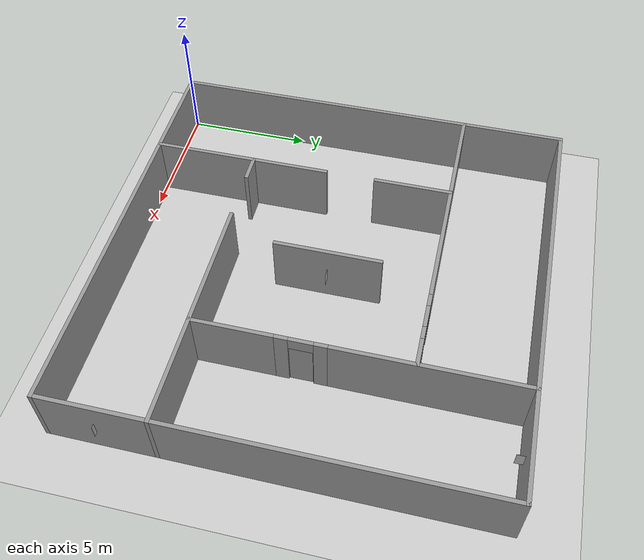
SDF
<sdf version="1.7">
 <world name="default">
  <model name="ground_plane">
   <static>1</static>
   <link name="link">
    <collision name="collision">
     <geometry><plane><normal>0 0 1</normal><size>100 100</size></plane></geometry>
     <surface><friction><ode><mu>100</mu><mu2>50</mu2></ode></friction></surface>
    </collision>
    <visual name="visual">
     <cast_shadows>0</cast_shadows>
     <geometry><plane><normal>0 0 1</normal><size>100 100</size></plane></geometry>
     <material>
      <script><uri>file://media/materials/scripts/gazebo.material</uri><name>Gazebo/Grey</name></script>
     </material>
    </visual>
   </link>
  </model>
  <model name="room1">
   <pose>8 8 0 0 -0 0</pose>
   <link name="Wall_1">
    <collision name="Wall_1_Collision">
     <geometry><box><size>16.15 0.15 2.5</size></box></geometry>
     <pose>0 0 1.25 0 -0 0</pose>
    </collision>
    <visual name="Wall_1_Visual">
     <pose>0 0 1.25 0 -0 0</pose>
     <geometry><box><size>16.15 0.15 2.5</size></box></geometry>
     <material>
      <script><uri>file://media/materials/scripts/gazebo.material</uri><name>Gazebo/Grey</name></script>
      <ambient>1 1 1 1</ambient>
     </material>
     <meta><layer>0</layer></meta>
    </visual>
    <pose>0 -8 0 0 -0 0</pose>
   </link>
   <link name="Wall_11">
    <pose>-2 4 0 0 -0 0</pose>
    <visual name="Wall_11_Visual_0">
     <pose>-1.5125 0 1.25 0 -0 0</pose>
     <geometry><box><size>9.125 0.15 2.5</size></box></geometry>
     <material>
      <script><uri>file://media/materials/scripts/gazebo.material</uri><name>Gazebo/Grey</name></script>
      <ambient>1 1 1 1</ambient>
     </material>
     <meta><layer>0</layer></meta>
    </visual>
    <collision name="Wall_11_Collision_0">
     <geometry><box><size>9.125 0.15 2.5</size></box></geometry>
     <pose>-1.5125 0 1.25 0 -0 0</pose>
    </collision>
    <visual name="Wall_11_Visual_1">
     <pose>5.5125 0 1.25 0 -0 0</pose>
     <geometry><box><size>1.125 0.15 2.5</size></box></geometry>
     <material>
      <script><uri>file://media/materials/scripts/gazebo.material</uri><name>Gazebo/Grey</name></script>
      <ambient>1 1 1 1</ambient>
     </material>
     <meta><layer>0</layer></meta>
    </visual>
    <collision name="Wall_11_Collision_1">
     <geometry><box><size>1.125 0.15 2.5</size></box></geometry>
     <pose>5.5125 0 1.25 0 -0 0</pose>
    </collision>
   </link>
   <link name="Wall_13">
    <pose>4 2 0 0 -0 -1.5708</pose>
    <visual name="Wall_13_Visual_0">
     <pose>-2.5125 0 1.25 0 -0 0</pose>
     <geometry><box><size>7.125 0.15 2.5</size></box></geometry>
     <material>
      <script><uri>file://media/materials/scripts/gazebo.material</uri><name>Gazebo/Grey</name></script>
      <ambient>1 1 1 1</ambient>
     </material>
     <meta><layer>0</layer></meta>
    </visual>
    <collision name="Wall_13_Collision_0">
     <geometry><box><size>7.125 0.15 2.5</size></box></geometry>
     <pose>-2.5125 0 1.25 0 -0 0</pose>
    </collision>
    <visual name="Wall_13_Visual_1">
     <pose>4.5125 0 1.25 0 -0 0</pose>
     <geometry><box><size>3.125 0.15 2.5</size></box></geometry>
     <material>
      <script><uri>file://media/materials/scripts/gazebo.material</uri><name>Gazebo/Grey</name></script>
      <ambient>1 1 1 1</ambient>
     </material>
     <meta><layer>0</layer></meta>
    </visual>
    <collision name="Wall_13_Collision_1">
     <geometry><box><size>3.125 0.15 2.5</size></box></geometry>
     <pose>4.5125 0 1.25 0 -0 0</pose>
    </collision>
   </link>
   <link name="Wall_15">
    <pose>2 -4 0 0 -0 0</pose>
    <visual name="Wall_15_Visual_0">
     <pose>-5.5125 0 1.25 0 -0 0</pose>
     <geometry><box><size>1.125 0.15 2.5</size></box></geometry>
     <material>
      <script><uri>file://media/materials/scripts/gazebo.material</uri><name>Gazebo/Grey</name></script>
      <ambient>1 1 1 1</ambient>
     </material>
     <meta><layer>0</layer></meta>
    </visual>
    <collision name="Wall_15_Collision_0">
     <geometry><box><size>1.125 0.15 2.5</size></box></geometry>
     <pose>-5.5125 0 1.25 0 -0 0</pose>
    </collision>
    <visual name="Wall_15_Visual_1">
     <pose>1.5125 0 1.25 0 -0 0</pose>
     <geometry><box><size>9.125 0.15 2.5</size></box></geometry>
     <material>
      <script><uri>file://media/materials/scripts/gazebo.material</uri><name>Gazebo/Grey</name></script>
      <ambient>1 1 1 1</ambient>
     </material>
     <meta><layer>0</layer></meta>
    </visual>
    <collision name="Wall_15_Collision_1">
     <geometry><box><size>9.125 0.15 2.5</size></box></geometry>
     <pose>1.5125 0 1.25 0 -0 0</pose>
    </collision>
   </link>
   <link name="Wall_17">
    <collision name="Wall_17_Collision">
     <geometry><box><size>4.15 0.15 2.5</size></box></geometry>
     <pose>0 0 1.25 0 -0 0</pose>
    </collision>
    <visual name="Wall_17_Visual">
     <pose>0 0 1.25 0 -0 0</pose>
     <geometry><box><size>4.15 0.15 2.5</size></box></geometry>
     <material>
      <script><uri>file://media/materials/scripts/gazebo.material</uri><name>Gazebo/Grey</name></script>
      <ambient>1 1 1 1</ambient>
     </material>
     <meta><layer>0</layer></meta>
    </visual>
    <pose>0 0 0 0 -0 1.5708</pose>
   </link>
   <link name="Wall_3">
    <collision name="Wall_3_Collision">
     <geometry><box><size>16.15 0.15 2.5</size></box></geometry>
     <pose>0 0 1.25 0 -0 0</pose>
    </collision>
    <visual name="Wall_3_Visual">
     <pose>0 0 1.25 0 -0 0</pose>
     <geometry><box><size>16.15 0.15 2.5</size></box></geometry>
     <material>
      <script><uri>file://media/materials/scripts/gazebo.material</uri><name>Gazebo/Grey</name></script>
      <ambient>1 1 1 1</ambient>
     </material>
     <meta><layer>0</layer></meta>
    </visual>
    <pose>-8 0 0 0 -0 1.5708</pose>
   </link>
   <link name="Wall_5">
    <collision name="Wall_5_Collision">
     <geometry><box><size>16.15 0.15 2.5</size></box></geometry>
     <pose>0 0 1.25 0 -0 0</pose>
    </collision>
    <visual name="Wall_5_Visual">
     <pose>0 0 1.25 0 -0 0</pose>
     <geometry><box><size>16.15 0.15 2.5</size></box></geometry>
     <material>
      <script><uri>file://media/materials/scripts/gazebo.material</uri><name>Gazebo/Grey</name></script>
      <ambient>1 1 1 1</ambient>
     </material>
     <meta><layer>0</layer></meta>
    </visual>
    <pose>0 8 0 0 -0 0</pose>
   </link>
   <link name="Wall_7">
    <collision name="Wall_7_Collision">
     <geometry><box><size>16.15 0.15 2.5</size></box></geometry>
     <pose>0 0 1.25 0 -0 0</pose>
    </collision>
    <visual name="Wall_7_Visual">
     <pose>0 0 1.25 0 -0 0</pose>
     <geometry><box><size>16.15 0.15 2.5</size></box></geometry>
     <material>
      <script><uri>file://media/materials/scripts/gazebo.material</uri><name>Gazebo/Grey</name></script>
      <ambient>1 1 1 1</ambient>
     </material>
     <meta><layer>0</layer></meta>
    </visual>
    <pose>8 0 0 0 -0 -1.5708</pose>
   </link>
   <link name="Wall_9">
    <pose>-4 -2 0 0 -0 1.5708</pose>
    <visual name="Wall_9_Visual_0">
     <pose>-2.5125 0 1.25 0 -0 0</pose>
     <geometry><box><size>7.125 0.15 2.5</size></box></geometry>
     <material>
      <script><uri>file://media/materials/scripts/gazebo.material</uri><name>Gazebo/Grey</name></script>
      <ambient>1 1 1 1</ambient>
     </material>
     <meta><layer>0</layer></meta>
    </visual>
    <collision name="Wall_9_Collision_0">
     <geometry><box><size>7.125 0.15 2.5</size></box></geometry>
     <pose>-2.5125 0 1.25 0 -0 0</pose>
    </collision>
    <visual name="Wall_9_Visual_1">
     <pose>4.5125 0 1.25 0 -0 0</pose>
     <geometry><box><size>3.125 0.15 2.5</size></box></geometry>
     <material>
      <script><uri>file://media/materials/scripts/gazebo.material</uri><name>Gazebo/Grey</name></script>
      <ambient>1 1 1 1</ambient>
     </material>
     <meta><layer>0</layer></meta>
    </visual>
    <collision name="Wall_9_Collision_1">
     <geometry><box><size>3.125 0.15 2.5</size></box></geometry>
     <pose>4.5125 0 1.25 0 -0 0</pose>
    </collision>
   </link>
   <static>1</static>
  </model>
  <model name="wall_with_door_no_gap_1">
   <link name="Wall">
    <pose>0 0 0 0 -4e-06 0</pose>
    <inertial>
     <inertia><ixx>1</ixx><ixy>0</ixy><ixz>0</ixz><iyy>1</iyy><iyz>0</iyz><izz>1</izz></inertia>
     <mass>1</mass>
    </inertial>
    <visual name="Wall_Visual_4">
     <pose>0.425 -0.055 1 0 -0 0</pose>
     <geometry><box><size>0.05 0.04 2</size></box></geometry>
     <material>
      <script><uri>file://media/materials/scripts/gazebo.material</uri><name>Gazebo/Grey</name></script>
      <ambient>1 1 1 1</ambient>
      <shader type="pixel"><normal_map>__default__</normal_map></shader>
      <emissive>0 0 0 1</emissive>
      <diffuse>0.7 0.7 0.7 1</diffuse>
      <specular>0.01 0.01 0.01 1</specular>
     </material>
     <meta><layer>0</layer></meta>
    </visual>
    <visual name="Wall_Visual_0">
     <pose>-0.7 0 1.25 0 -0 0</pose>
     <geometry><box><size>0.5 0.15 2.5</size></box></geometry>
     <material>
      <script><uri>file://media/materials/scripts/gazebo.material</uri><name>Gazebo/Grey</name></script>
      <ambient>1 1 1 1</ambient>
      <shader type="pixel"><normal_map>__default__</normal_map></shader>
      <emissive>0 0 0 1</emissive>
      <diffuse>0.7 0.7 0.7 1</diffuse>
      <specular>0.01 0.01 0.01 1</specular>
     </material>
     <meta><layer>0</layer></meta>
    </visual>
    <visual name="Wall_visual_3">
     <pose>-0.425 -0.055 1 0 -0 0</pose>
     <geometry><box><size>0.05 0.04 2</size></box></geometry>
     <material>
      <script><uri>file://media/materials/scripts/gazebo.material</uri><name>Gazebo/Grey</name></script>
      <ambient>1 1 1 1</ambient>
      <shader type="pixel"><normal_map>__default__</normal_map></shader>
      <emissive>0 0 0 1</emissive>
      <diffuse>0.7 0.7 0.7 1</diffuse>
      <specular>0.01 0.01 0.01 1</specular>
     </material>
     <meta><layer>0</layer></meta>
    </visual>
    <visual name="Wall_Visual_1">
     <pose>0.7 0 1.25 0 -0 0</pose>
     <geometry><box><size>0.5 0.15 2.5</size></box></geometry>
     <material>
      <script><uri>file://media/materials/scripts/gazebo.material</uri><name>Gazebo/Grey</name></script>
      <ambient>1 1 1 1</ambient>
      <shader type="pixel"><normal_map>__default__</normal_map></shader>
      <emissive>0 0 0 1</emissive>
      <diffuse>0.7 0.7 0.7 1</diffuse>
      <specular>0.01 0.01 0.01 1</specular>
     </material>
     <meta><layer>0</layer></meta>
    </visual>
    <visual name="Wall_Visual_2">
     <pose>0 0 2.25 0 -0 0</pose>
     <geometry><box><size>0.9 0.15 0.5</size></box></geometry>
     <material>
      <script><uri>file://media/materials/scripts/gazebo.material</uri><name>Gazebo/Grey</name></script>
      <ambient>1 1 1 1</ambient>
      <shader type="pixel"><normal_map>__default__</normal_map></shader>
      <emissive>0 0 0 1</emissive>
      <diffuse>0.7 0.7 0.7 1</diffuse>
      <specular>0.01 0.01 0.01 1</specular>
     </material>
     <meta><layer>0</layer></meta>
    </visual>
    <collision name="Wall_Collision_3">
     <pose>-0.425 -0.055 1 0 -0 0</pose>
     <geometry><box><size>0.05 0.04 2</size></box></geometry>
     <surface>
      <friction>
       <ode><mu>1</mu><mu2>1</mu2><fdir1>0 0 0</fdir1><slip1>0</slip1><slip2>0</slip2></ode>
       <torsional>
        <coefficient>1</coefficient>
        <patch_radius>0</patch_radius>
        <surface_radius>0</surface_radius>
        <use_patch_radius>1</use_patch_radius>
        <ode><slip>0</slip></ode>
       </torsional>
      </friction>
      <bounce><restitution_coefficient>0</restitution_coefficient><threshold>1e+06</threshold></bounce>
      <contact>
       <collide_without_contact>0</collide_without_contact>
       <collide_without_contact_bitmask>1</collide_without_contact_bitmask>
       <collide_bitmask>1</collide_bitmask>
       <ode>
        <soft_cfm>0</soft_cfm>
        <soft_erp>0.2</soft_erp>
        <kp>1e+13</kp>
        <kd>1</kd>
        <max_vel>0.01</max_vel>
        <min_depth>0</min_depth>
       </ode>
       <bullet>
        <split_impulse>1</split_impulse>
        <split_impulse_penetration_threshold>-0.01</split_impulse_penetration_threshold>
        <soft_cfm>0</soft_cfm>
        <soft_erp>0.2</soft_erp>
        <kp>1e+13</kp>
        <kd>1</kd>
       </bullet>
      </contact>
     </surface>
    </collision>
    <collision name="Wall_Collision_4">
     <pose>0.425 -0.055 1 0 -0 0</pose>
     <geometry><box><size>0.05 0.04 2</size></box></geometry>
     <surface>
      <friction>
       <ode><mu>1</mu><mu2>1</mu2><fdir1>0 0 0</fdir1><slip1>0</slip1><slip2>0</slip2></ode>
       <torsional>
        <coefficient>1</coefficient>
        <patch_radius>0</patch_radius>
        <surface_radius>0</surface_radius>
        <use_patch_radius>1</use_patch_radius>
        <ode><slip>0</slip></ode>
       </torsional>
      </friction>
      <bounce><restitution_coefficient>0</restitution_coefficient><threshold>1e+06</threshold></bounce>
      <contact>
       <collide_without_contact>0</collide_without_contact>
       <collide_without_contact_bitmask>1</collide_without_contact_bitmask>
       <collide_bitmask>1</collide_bitmask>
       <ode>
        <soft_cfm>0</soft_cfm>
        <soft_erp>0.2</soft_erp>
        <kp>1e+13</kp>
        <kd>1</kd>
        <max_vel>0.01</max_vel>
        <min_depth>0</min_depth>
       </ode>
       <bullet>
        <split_impulse>1</split_impulse>
        <split_impulse_penetration_threshold>-0.01</split_impulse_penetration_threshold>
        <soft_cfm>0</soft_cfm>
        <soft_erp>0.2</soft_erp>
        <kp>1e+13</kp>
        <kd>1</kd>
       </bullet>
      </contact>
     </surface>
    </collision>
    <collision name="Wall_Collision_1">
     <pose>0.7 0 1.25 0 -0 0</pose>
     <geometry><box><size>0.5 0.15 2.5</size></box></geometry>
     <surface>
      <friction>
       <ode><mu>1</mu><mu2>1</mu2><fdir1>0 0 0</fdir1><slip1>0</slip1><slip2>0</slip2></ode>
       <torsional>
        <coefficient>1</coefficient>
        <patch_radius>0</patch_radius>
        <surface_radius>0</surface_radius>
        <use_patch_radius>1</use_patch_radius>
        <ode><slip>0</slip></ode>
       </torsional>
      </friction>
      <bounce><restitution_coefficient>0</restitution_coefficient><threshold>1e+06</threshold></bounce>
      <contact>
       <collide_without_contact>0</collide_without_contact>
       <collide_without_contact_bitmask>1</collide_without_contact_bitmask>
       <collide_bitmask>1</collide_bitmask>
       <ode>
        <soft_cfm>0</soft_cfm>
        <soft_erp>0.2</soft_erp>
        <kp>1e+13</kp>
        <kd>1</kd>
        <max_vel>0.01</max_vel>
        <min_depth>0</min_depth>
       </ode>
       <bullet>
        <split_impulse>1</split_impulse>
        <split_impulse_penetration_threshold>-0.01</split_impulse_penetration_threshold>
        <soft_cfm>0</soft_cfm>
        <soft_erp>0.2</soft_erp>
        <kp>1e+13</kp>
        <kd>1</kd>
       </bullet>
      </contact>
     </surface>
    </collision>
    <collision name="Wall_Collision_0">
     <pose>-0.7 0 1.25 0 -0 0</pose>
     <geometry><box><size>0.5 0.15 2.5</size></box></geometry>
     <surface>
      <friction>
       <ode><mu>1</mu><mu2>1</mu2><fdir1>0 0 0</fdir1><slip1>0</slip1><slip2>0</slip2></ode>
       <torsional>
        <coefficient>1</coefficient>
        <patch_radius>0</patch_radius>
        <surface_radius>0</surface_radius>
        <use_patch_radius>1</use_patch_radius>
        <ode><slip>0</slip></ode>
       </torsional>
      </friction>
      <bounce><restitution_coefficient>0</restitution_coefficient><threshold>1e+06</threshold></bounce>
      <contact>
       <collide_without_contact>0</collide_without_contact>
       <collide_without_contact_bitmask>1</collide_without_contact_bitmask>
       <collide_bitmask>1</collide_bitmask>
       <ode>
        <soft_cfm>0</soft_cfm>
        <soft_erp>0.2</soft_erp>
        <kp>1e+13</kp>
        <kd>1</kd>
        <max_vel>0.01</max_vel>
        <min_depth>0</min_depth>
       </ode>
       <bullet>
        <split_impulse>1</split_impulse>
        <split_impulse_penetration_threshold>-0.01</split_impulse_penetration_threshold>
        <soft_cfm>0</soft_cfm>
        <soft_erp>0.2</soft_erp>
        <kp>1e+13</kp>
        <kd>1</kd>
       </bullet>
      </contact>
     </surface>
    </collision>
    <collision name="Wall_Collision_2">
     <pose>0 0 2.25 0 -0 0</pose>
     <geometry><box><size>0.9 0.15 0.5</size></box></geometry>
     <surface>
      <friction>
       <ode><mu>1</mu><mu2>1</mu2><fdir1>0 0 0</fdir1><slip1>0</slip1><slip2>0</slip2></ode>
       <torsional>
        <coefficient>1</coefficient>
        <patch_radius>0</patch_radius>
        <surface_radius>0</surface_radius>
        <use_patch_radius>1</use_patch_radius>
        <ode><slip>0</slip></ode>
       </torsional>
      </friction>
      <bounce><restitution_coefficient>0</restitution_coefficient><threshold>1e+06</threshold></bounce>
      <contact>
       <collide_without_contact>0</collide_without_contact>
       <collide_without_contact_bitmask>1</collide_without_contact_bitmask>
       <collide_bitmask>1</collide_bitmask>
       <ode>
        <soft_cfm>0</soft_cfm>
        <soft_erp>0.2</soft_erp>
        <kp>1e+13</kp>
        <kd>1</kd>
        <max_vel>0.01</max_vel>
        <min_depth>0</min_depth>
       </ode>
       <bullet>
        <split_impulse>1</split_impulse>
        <split_impulse_penetration_threshold>-0.01</split_impulse_penetration_threshold>
        <soft_cfm>0</soft_cfm>
        <soft_erp>0.2</soft_erp>
        <kp>1e+13</kp>
        <kd>1</kd>
       </bullet>
      </contact>
     </surface>
    </collision>
    <static>1</static>
   </link>
   <link name="door">
    <inertial>
     <mass>1</mass>
     <inertia>
      <ixx>0.166667</ixx>
      <ixy>0</ixy>
      <ixz>0</ixz>
      <iyy>0.166667</iyy>
      <iyz>0</iyz>
      <izz>0.166667</izz>
     </inertia>
    </inertial>
    <pose>-0 -0 1 0 -4e-06 0</pose>
    <visual name="visual">
     <pose>0.01 0 0 0 -0 0</pose>
     <geometry><box><size>0.86 0.04 2</size></box></geometry>
     <material>
      <lighting>1</lighting>
      <script><uri>file://media/materials/scripts/gazebo.material</uri><name>Gazebo/Grey</name></script>
      <shader type="pixel"><normal_map>__default__</normal_map></shader>
      <ambient>0.3 0.3 0.3 1</ambient>
      <diffuse>0.7 0.7 0.7 1</diffuse>
      <specular>0.01 0.01 0.01 1</specular>
      <emissive>0 0 0 1</emissive>
     </material>
    </visual>
    <collision name="collision">
     <pose>0.01 0 0 0 -0 0</pose>
     <geometry><box><size>0.84 0.04 2</size></box></geometry>
     <surface>
      <friction>
       <ode><mu>1</mu><mu2>1</mu2><fdir1>0 0 0</fdir1><slip1>0</slip1><slip2>0</slip2></ode>
       <torsional>
        <coefficient>1</coefficient>
        <patch_radius>0</patch_radius>
        <surface_radius>0</surface_radius>
        <use_patch_radius>1</use_patch_radius>
        <ode><slip>0</slip></ode>
       </torsional>
      </friction>
      <bounce><restitution_coefficient>0</restitution_coefficient><threshold>1e+06</threshold></bounce>
      <contact>
       <collide_without_contact>0</collide_without_contact>
       <collide_without_contact_bitmask>1</collide_without_contact_bitmask>
       <collide_bitmask>1</collide_bitmask>
       <ode>
        <soft_cfm>0</soft_cfm>
        <soft_erp>0.2</soft_erp>
        <kp>1e+13</kp>
        <kd>1</kd>
        <max_vel>0.01</max_vel>
        <min_depth>0</min_depth>
       </ode>
       <bullet>
        <split_impulse>1</split_impulse>
        <split_impulse_penetration_threshold>-0.01</split_impulse_penetration_threshold>
        <soft_cfm>0</soft_cfm>
        <soft_erp>0.2</soft_erp>
        <kp>1e+13</kp>
        <kd>1</kd>
       </bullet>
      </contact>
     </surface>
    </collision>
    <static>0</static>
   </link>
   <joint name="Door_JOINT" type="revolute">
    <parent>Wall</parent>
    <child>door</child>
    <pose>-0.43 0 0 0 -0 0</pose>
    <axis>
     <xyz>0 0 1</xyz>
     <limit><lower>0</lower><upper>1.57</upper><effort>-1</effort><velocity>-1</velocity></limit>
     <dynamics>
      <spring_reference>0</spring_reference>
      <spring_stiffness>0</spring_stiffness>
      <damping>0</damping>
      <friction>0</friction>
     </dynamics>
    </axis>
    <physics>
     <ode><limit><cfm>0</cfm><erp>0.2</erp></limit><suspension><cfm>0</cfm><erp>0.2</erp></suspension></ode>
    </physics>
   </joint>
   <joint name="WALL_FIXED" type="fixed"><parent>world</parent><child>Wall</child></joint>
   <plugin name="wall_and_door_plugin" filename="libDoorControlPlugin.so">
    <initial_position>0</initial_position>
    <switch_flag>true</switch_flag>
    <switch_duration>20</switch_duration>
   </plugin>
   <static>0</static>
   <pose>12 8 0 0 0 -1.57</pose>
  </model>
  <model name="wall_with_door_no_gap_2">
   <link name="Wall">
    <pose>0 0 0 0 -4e-06 0</pose>
    <inertial>
     <inertia><ixx>1</ixx><ixy>0</ixy><ixz>0</ixz><iyy>1</iyy><iyz>0</iyz><izz>1</izz></inertia>
     <mass>1</mass>
    </inertial>
    <visual name="Wall_Visual_4">
     <pose>0.425 -0.055 1 0 -0 0</pose>
     <geometry><box><size>0.05 0.04 2</size></box></geometry>
     <material>
      <script><uri>file://media/materials/scripts/gazebo.material</uri><name>Gazebo/Grey</name></script>
      <ambient>1 1 1 1</ambient>
      <shader type="pixel"><normal_map>__default__</normal_map></shader>
      <emissive>0 0 0 1</emissive>
      <diffuse>0.7 0.7 0.7 1</diffuse>
      <specular>0.01 0.01 0.01 1</specular>
     </material>
     <meta><layer>0</layer></meta>
    </visual>
    <visual name="Wall_Visual_0">
     <pose>-0.7 0 1.25 0 -0 0</pose>
     <geometry><box><size>0.5 0.15 2.5</size></box></geometry>
     <material>
      <script><uri>file://media/materials/scripts/gazebo.material</uri><name>Gazebo/Grey</name></script>
      <ambient>1 1 1 1</ambient>
      <shader type="pixel"><normal_map>__default__</normal_map></shader>
      <emissive>0 0 0 1</emissive>
      <diffuse>0.7 0.7 0.7 1</diffuse>
      <specular>0.01 0.01 0.01 1</specular>
     </material>
     <meta><layer>0</layer></meta>
    </visual>
    <visual name="Wall_visual_3">
     <pose>-0.425 -0.055 1 0 -0 0</pose>
     <geometry><box><size>0.05 0.04 2</size></box></geometry>
     <material>
      <script><uri>file://media/materials/scripts/gazebo.material</uri><name>Gazebo/Grey</name></script>
      <ambient>1 1 1 1</ambient>
      <shader type="pixel"><normal_map>__default__</normal_map></shader>
      <emissive>0 0 0 1</emissive>
      <diffuse>0.7 0.7 0.7 1</diffuse>
      <specular>0.01 0.01 0.01 1</specular>
     </material>
     <meta><layer>0</layer></meta>
    </visual>
    <visual name="Wall_Visual_1">
     <pose>0.7 0 1.25 0 -0 0</pose>
     <geometry><box><size>0.5 0.15 2.5</size></box></geometry>
     <material>
      <script><uri>file://media/materials/scripts/gazebo.material</uri><name>Gazebo/Grey</name></script>
      <ambient>1 1 1 1</ambient>
      <shader type="pixel"><normal_map>__default__</normal_map></shader>
      <emissive>0 0 0 1</emissive>
      <diffuse>0.7 0.7 0.7 1</diffuse>
      <specular>0.01 0.01 0.01 1</specular>
     </material>
     <meta><layer>0</layer></meta>
    </visual>
    <visual name="Wall_Visual_2">
     <pose>0 0 2.25 0 -0 0</pose>
     <geometry><box><size>0.9 0.15 0.5</size></box></geometry>
     <material>
      <script><uri>file://media/materials/scripts/gazebo.material</uri><name>Gazebo/Grey</name></script>
      <ambient>1 1 1 1</ambient>
      <shader type="pixel"><normal_map>__default__</normal_map></shader>
      <emissive>0 0 0 1</emissive>
      <diffuse>0.7 0.7 0.7 1</diffuse>
      <specular>0.01 0.01 0.01 1</specular>
     </material>
     <meta><layer>0</layer></meta>
    </visual>
    <collision name="Wall_Collision_3">
     <pose>-0.425 -0.055 1 0 -0 0</pose>
     <geometry><box><size>0.05 0.04 2</size></box></geometry>
     <surface>
      <friction>
       <ode><mu>1</mu><mu2>1</mu2><fdir1>0 0 0</fdir1><slip1>0</slip1><slip2>0</slip2></ode>
       <torsional>
        <coefficient>1</coefficient>
        <patch_radius>0</patch_radius>
        <surface_radius>0</surface_radius>
        <use_patch_radius>1</use_patch_radius>
        <ode><slip>0</slip></ode>
       </torsional>
      </friction>
      <bounce><restitution_coefficient>0</restitution_coefficient><threshold>1e+06</threshold></bounce>
      <contact>
       <collide_without_contact>0</collide_without_contact>
       <collide_without_contact_bitmask>1</collide_without_contact_bitmask>
       <collide_bitmask>1</collide_bitmask>
       <ode>
        <soft_cfm>0</soft_cfm>
        <soft_erp>0.2</soft_erp>
        <kp>1e+13</kp>
        <kd>1</kd>
        <max_vel>0.01</max_vel>
        <min_depth>0</min_depth>
       </ode>
       <bullet>
        <split_impulse>1</split_impulse>
        <split_impulse_penetration_threshold>-0.01</split_impulse_penetration_threshold>
        <soft_cfm>0</soft_cfm>
        <soft_erp>0.2</soft_erp>
        <kp>1e+13</kp>
        <kd>1</kd>
       </bullet>
      </contact>
     </surface>
    </collision>
    <collision name="Wall_Collision_4">
     <pose>0.425 -0.055 1 0 -0 0</pose>
     <geometry><box><size>0.05 0.04 2</size></box></geometry>
     <surface>
      <friction>
       <ode><mu>1</mu><mu2>1</mu2><fdir1>0 0 0</fdir1><slip1>0</slip1><slip2>0</slip2></ode>
       <torsional>
        <coefficient>1</coefficient>
        <patch_radius>0</patch_radius>
        <surface_radius>0</surface_radius>
        <use_patch_radius>1</use_patch_radius>
        <ode><slip>0</slip></ode>
       </torsional>
      </friction>
      <bounce><restitution_coefficient>0</restitution_coefficient><threshold>1e+06</threshold></bounce>
      <contact>
       <collide_without_contact>0</collide_without_contact>
       <collide_without_contact_bitmask>1</collide_without_contact_bitmask>
       <collide_bitmask>1</collide_bitmask>
       <ode>
        <soft_cfm>0</soft_cfm>
        <soft_erp>0.2</soft_erp>
        <kp>1e+13</kp>
        <kd>1</kd>
        <max_vel>0.01</max_vel>
        <min_depth>0</min_depth>
       </ode>
       <bullet>
        <split_impulse>1</split_impulse>
        <split_impulse_penetration_threshold>-0.01</split_impulse_penetration_threshold>
        <soft_cfm>0</soft_cfm>
        <soft_erp>0.2</soft_erp>
        <kp>1e+13</kp>
        <kd>1</kd>
       </bullet>
      </contact>
     </surface>
    </collision>
    <collision name="Wall_Collision_1">
     <pose>0.7 0 1.25 0 -0 0</pose>
     <geometry><box><size>0.5 0.15 2.5</size></box></geometry>
     <surface>
      <friction>
       <ode><mu>1</mu><mu2>1</mu2><fdir1>0 0 0</fdir1><slip1>0</slip1><slip2>0</slip2></ode>
       <torsional>
        <coefficient>1</coefficient>
        <patch_radius>0</patch_radius>
        <surface_radius>0</surface_radius>
        <use_patch_radius>1</use_patch_radius>
        <ode><slip>0</slip></ode>
       </torsional>
      </friction>
      <bounce><restitution_coefficient>0</restitution_coefficient><threshold>1e+06</threshold></bounce>
      <contact>
       <collide_without_contact>0</collide_without_contact>
       <collide_without_contact_bitmask>1</collide_without_contact_bitmask>
       <collide_bitmask>1</collide_bitmask>
       <ode>
        <soft_cfm>0</soft_cfm>
        <soft_erp>0.2</soft_erp>
        <kp>1e+13</kp>
        <kd>1</kd>
        <max_vel>0.01</max_vel>
        <min_depth>0</min_depth>
       </ode>
       <bullet>
        <split_impulse>1</split_impulse>
        <split_impulse_penetration_threshold>-0.01</split_impulse_penetration_threshold>
        <soft_cfm>0</soft_cfm>
        <soft_erp>0.2</soft_erp>
        <kp>1e+13</kp>
        <kd>1</kd>
       </bullet>
      </contact>
     </surface>
    </collision>
    <collision name="Wall_Collision_0">
     <pose>-0.7 0 1.25 0 -0 0</pose>
     <geometry><box><size>0.5 0.15 2.5</size></box></geometry>
     <surface>
      <friction>
       <ode><mu>1</mu><mu2>1</mu2><fdir1>0 0 0</fdir1><slip1>0</slip1><slip2>0</slip2></ode>
       <torsional>
        <coefficient>1</coefficient>
        <patch_radius>0</patch_radius>
        <surface_radius>0</surface_radius>
        <use_patch_radius>1</use_patch_radius>
        <ode><slip>0</slip></ode>
       </torsional>
      </friction>
      <bounce><restitution_coefficient>0</restitution_coefficient><threshold>1e+06</threshold></bounce>
      <contact>
       <collide_without_contact>0</collide_without_contact>
       <collide_without_contact_bitmask>1</collide_without_contact_bitmask>
       <collide_bitmask>1</collide_bitmask>
       <ode>
        <soft_cfm>0</soft_cfm>
        <soft_erp>0.2</soft_erp>
        <kp>1e+13</kp>
        <kd>1</kd>
        <max_vel>0.01</max_vel>
        <min_depth>0</min_depth>
       </ode>
       <bullet>
        <split_impulse>1</split_impulse>
        <split_impulse_penetration_threshold>-0.01</split_impulse_penetration_threshold>
        <soft_cfm>0</soft_cfm>
        <soft_erp>0.2</soft_erp>
        <kp>1e+13</kp>
        <kd>1</kd>
       </bullet>
      </contact>
     </surface>
    </collision>
    <collision name="Wall_Collision_2">
     <pose>0 0 2.25 0 -0 0</pose>
     <geometry><box><size>0.9 0.15 0.5</size></box></geometry>
     <surface>
      <friction>
       <ode><mu>1</mu><mu2>1</mu2><fdir1>0 0 0</fdir1><slip1>0</slip1><slip2>0</slip2></ode>
       <torsional>
        <coefficient>1</coefficient>
        <patch_radius>0</patch_radius>
        <surface_radius>0</surface_radius>
        <use_patch_radius>1</use_patch_radius>
        <ode><slip>0</slip></ode>
       </torsional>
      </friction>
      <bounce><restitution_coefficient>0</restitution_coefficient><threshold>1e+06</threshold></bounce>
      <contact>
       <collide_without_contact>0</collide_without_contact>
       <collide_without_contact_bitmask>1</collide_without_contact_bitmask>
       <collide_bitmask>1</collide_bitmask>
       <ode>
        <soft_cfm>0</soft_cfm>
        <soft_erp>0.2</soft_erp>
        <kp>1e+13</kp>
        <kd>1</kd>
        <max_vel>0.01</max_vel>
        <min_depth>0</min_depth>
       </ode>
       <bullet>
        <split_impulse>1</split_impulse>
        <split_impulse_penetration_threshold>-0.01</split_impulse_penetration_threshold>
        <soft_cfm>0</soft_cfm>
        <soft_erp>0.2</soft_erp>
        <kp>1e+13</kp>
        <kd>1</kd>
       </bullet>
      </contact>
     </surface>
    </collision>
    <static>1</static>
   </link>
   <link name="door">
    <inertial>
     <mass>1</mass>
     <inertia>
      <ixx>0.166667</ixx>
      <ixy>0</ixy>
      <ixz>0</ixz>
      <iyy>0.166667</iyy>
      <iyz>0</iyz>
      <izz>0.166667</izz>
     </inertia>
    </inertial>
    <pose>-0 -0 1 0 -4e-06 0</pose>
    <visual name="visual">
     <pose>0.01 0 0 0 -0 0</pose>
     <geometry><box><size>0.86 0.04 2</size></box></geometry>
     <material>
      <lighting>1</lighting>
      <script><uri>file://media/materials/scripts/gazebo.material</uri><name>Gazebo/Grey</name></script>
      <shader type="pixel"><normal_map>__default__</normal_map></shader>
      <ambient>0.3 0.3 0.3 1</ambient>
      <diffuse>0.7 0.7 0.7 1</diffuse>
      <specular>0.01 0.01 0.01 1</specular>
      <emissive>0 0 0 1</emissive>
     </material>
    </visual>
    <collision name="collision">
     <pose>0.01 0 0 0 -0 0</pose>
     <geometry><box><size>0.84 0.04 2</size></box></geometry>
     <surface>
      <friction>
       <ode><mu>1</mu><mu2>1</mu2><fdir1>0 0 0</fdir1><slip1>0</slip1><slip2>0</slip2></ode>
       <torsional>
        <coefficient>1</coefficient>
        <patch_radius>0</patch_radius>
        <surface_radius>0</surface_radius>
        <use_patch_radius>1</use_patch_radius>
        <ode><slip>0</slip></ode>
       </torsional>
      </friction>
      <bounce><restitution_coefficient>0</restitution_coefficient><threshold>1e+06</threshold></bounce>
      <contact>
       <collide_without_contact>0</collide_without_contact>
       <collide_without_contact_bitmask>1</collide_without_contact_bitmask>
       <collide_bitmask>1</collide_bitmask>
       <ode>
        <soft_cfm>0</soft_cfm>
        <soft_erp>0.2</soft_erp>
        <kp>1e+13</kp>
        <kd>1</kd>
        <max_vel>0.01</max_vel>
        <min_depth>0</min_depth>
       </ode>
       <bullet>
        <split_impulse>1</split_impulse>
        <split_impulse_penetration_threshold>-0.01</split_impulse_penetration_threshold>
        <soft_cfm>0</soft_cfm>
        <soft_erp>0.2</soft_erp>
        <kp>1e+13</kp>
        <kd>1</kd>
       </bullet>
      </contact>
     </surface>
    </collision>
    <static>0</static>
   </link>
   <joint name="Door_JOINT" type="revolute">
    <parent>Wall</parent>
    <child>door</child>
    <pose>-0.43 0 0 0 -0 0</pose>
    <axis>
     <xyz>0 0 1</xyz>
     <limit><lower>0</lower><upper>1.57</upper><effort>-1</effort><velocity>-1</velocity></limit>
     <dynamics>
      <spring_reference>0</spring_reference>
      <spring_stiffness>0</spring_stiffness>
      <damping>0</damping>
      <friction>0</friction>
     </dynamics>
    </axis>
    <physics>
     <ode><limit><cfm>0</cfm><erp>0.2</erp></limit><suspension><cfm>0</cfm><erp>0.2</erp></suspension></ode>
    </physics>
   </joint>
   <joint name="WALL_FIXED" type="fixed"><parent>world</parent><child>Wall</child></joint>
   <plugin name="wall_and_door_plugin" filename="libDoorControlPlugin.so">
    <initial_position>0</initial_position>
    <switch_flag>true</switch_flag>
    <switch_duration>25</switch_duration>
   </plugin>
   <static>0</static>
   <pose>10 12 0 0 -0 0</pose>
  </model>
  <model name="static_apriltag_2">
   <link name="link">
    <pose>0 0 0 0 1.57 0</pose>
    <inertial>
     <mass>0.39</mass>
     <inertia><ixx>0.00058</ixx><ixy>0</ixy><ixz>0</ixz><iyy>0.00058</iyy><iyz>0</iyz><izz>0.00019</izz></inertia>
    </inertial>
    <collision name="collision"><geometry><box><size>0.6 0.6 0.01</size></box></geometry></collision>
    <visual name="visual">
     <geometry><box><size>0.6 0.6 0.01</size></box></geometry>
     <material>
      <script>
       <uri>model://apriltag/materials/scripts</uri>
       <uri>model://apriltag/materials/textures</uri>
       <name>apriltag/Diffuse2</name>
      </script>
     </material>
    </visual>
    <gravity>0</gravity>
   </link>
   <pose>12 3.927 1.25 0 -0 0</pose>
   <static>1</static>
   <pose>0.80811 0.829943 0 0 -0 0</pose>
  </model>
  <model name="static_apriltag_3">
   <link name="link">
    <pose>0 0 0 -1.57 1.57 -0</pose>
    <inertial>
     <mass>0.39</mass>
     <inertia><ixx>0.00058</ixx><ixy>0</ixy><ixz>0</ixz><iyy>0.00058</iyy><iyz>0</iyz><izz>0.00019</izz></inertia>
    </inertial>
    <collision name="collision"><geometry><box><size>0.6 0.6 0.01</size></box></geometry></collision>
    <visual name="visual">
     <geometry><box><size>0.6 0.6 0.01</size></box></geometry>
     <material>
      <script>
       <uri>model://apriltag/materials/scripts</uri>
       <uri>model://apriltag/materials/textures</uri>
       <name>apriltag/Diffuse3</name>
      </script>
     </material>
    </visual>
    <gravity>0</gravity>
   </link>
   <pose>15.925 2 1.25 0 -0 0</pose>
   <static>1</static>
   <pose>3.65849 3.02317 0 0 -0 0</pose>
  </model>
  <model name="static_apriltag_5">
   <link name="link">
    <pose>0 0 0 -1.57 1.57 -0</pose>
    <inertial>
     <mass>0.39</mass>
     <inertia><ixx>0.00058</ixx><ixy>0</ixy><ixz>0</ixz><iyy>0.00058</iyy><iyz>0</iyz><izz>0.00019</izz></inertia>
    </inertial>
    <collision name="collision"><geometry><box><size>0.6 0.6 0.01</size></box></geometry></collision>
    <visual name="visual">
     <geometry><box><size>0.6 0.6 0.01</size></box></geometry>
     <material>
      <script>
       <uri>model://apriltag/materials/scripts</uri>
       <uri>model://apriltag/materials/textures</uri>
       <name>apriltag/Diffuse5</name>
      </script>
     </material>
    </visual>
    <gravity>0</gravity>
   </link>
   <pose>8.075 8 1.25 0 -0 0</pose>
   <static>1</static>
   <pose>5.04082 3.71574 0 0 -0 0</pose>
  </model>
  <model name="static_apriltag_8">
   <link name="link">
    <pose>0 0 0 0 1.57 0</pose>
    <inertial>
     <mass>0.39</mass>
     <inertia><ixx>0.00058</ixx><ixy>0</ixy><ixz>0</ixz><iyy>0.00058</iyy><iyz>0</iyz><izz>0.00019</izz></inertia>
    </inertial>
    <collision name="collision"><geometry><box><size>0.6 0.6 0.01</size></box></geometry></collision>
    <visual name="visual">
     <geometry><box><size>0.6 0.6 0.01</size></box></geometry>
     <material>
      <script>
       <uri>model://apriltag/materials/scripts</uri>
       <uri>model://apriltag/materials/textures</uri>
       <name>apriltag/Diffuse7</name>
      </script>
     </material>
    </visual>
    <gravity>0</gravity>
   </link>
   <pose>14 15.925 1.25 0 -0 0</pose>
   <static>1</static>
   <pose>3.12393 4.47604 0 0 -0 0</pose>
  </model>
  <model name="static_apriltag_9">
   <link name="link">
    <pose>0 0 0 0 1.57 0</pose>
    <inertial>
     <mass>0.39</mass>
     <inertia><ixx>0.00058</ixx><ixy>0</ixy><ixz>0</ixz><iyy>0.00058</iyy><iyz>0</iyz><izz>0.00019</izz></inertia>
    </inertial>
    <collision name="collision"><geometry><box><size>0.6 0.6 0.01</size></box></geometry></collision>
    <visual name="visual">
     <geometry><box><size>0.6 0.6 0.01</size></box></geometry>
     <material>
      <script>
       <uri>model://apriltag/materials/scripts</uri>
       <uri>model://apriltag/materials/textures</uri>
       <name>apriltag/Diffuse7</name>
      </script>
     </material>
    </visual>
    <gravity>0</gravity>
   </link>
   <pose>15.925 12 1.25 0 -0 0</pose>
   <static>1</static>
   <pose>3.12393 4.47604 0 0 -0 0</pose>
  </model>
 </world>
</sdf>
